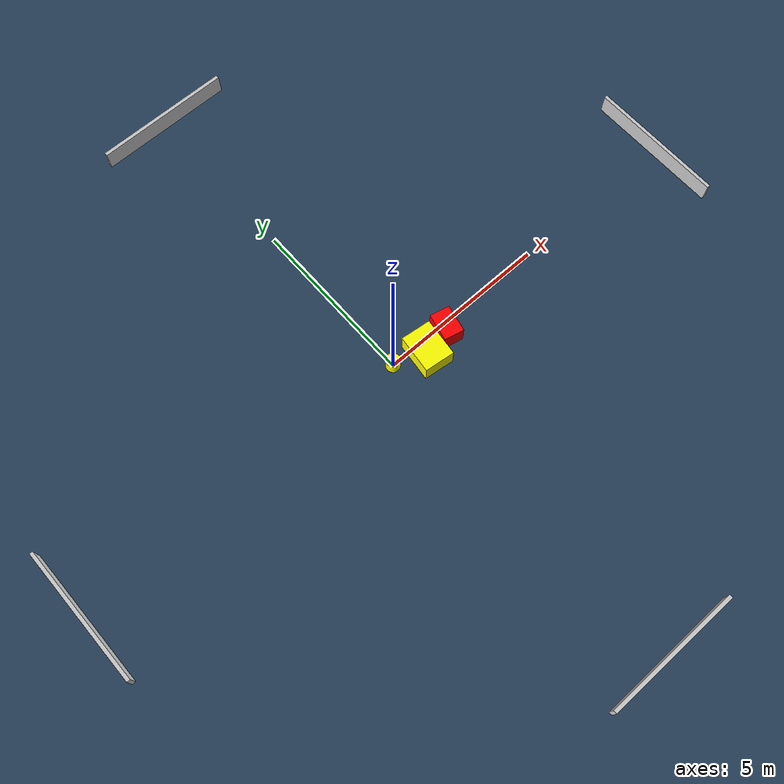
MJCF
<?xml version="1.0" ?>
<mujoco model="generated_environment">
  <option timestep="0.01" integrator="RK4" cone="elliptic"/>
  <default>
    <geom density="1"/>
  </default>
  <asset>
    <texture builtin="gradient" height="3072" name="skybox" rgb1="0.3 0.5 0.7" rgb2="0 0 0" type="skybox" width="512"/>
    <texture builtin="checker" height="300" name="groundplane" rgb1="0.2 0.3 0.4" rgb2="0.1 0.2 0.3" type="2d" width="300"/>
    <material name="groundplane" reflectance="0.2" texrepeat="5 5" texture="groundplane"/>
  </asset>
  <worldbody>
    <light dir="0 0 -1" directional="true" pos="0 0 1.5"/>
    <geom condim="3" friction="0.5 0.005 0.001" material="groundplane" name="floor" pos="0 0 0" size="0 0 0.05" type="plane"/>
    <body name="walls">
      <geom name="wall_1" condim="4" pos="-10.0 0.0 0.3" rgba="0.800000011920929 0.800000011920929 0.800000011920929 1.0" size="0.05 2.0 0.3" type="box"/>
      <geom name="wall_2" condim="4" pos="10.0 0.0 0.3" rgba="0.800000011920929 0.800000011920929 0.800000011920929 1.0" size="0.05 2.0 0.3" type="box"/>
      <geom name="wall_3" condim="4" pos="0.0 -10.0 0.3" rgba="0.800000011920929 0.800000011920929 0.800000011920929 1.0" size="2.0 0.05 0.3" type="box"/>
      <geom name="wall_4" condim="4" pos="0.0 10.0 0.3" rgba="0.800000011920929 0.800000011920929 0.800000011920929 1.0" size="2.0 0.05 0.3" type="box"/>
    </body>
    <body name="robot">
      <joint name="joint_x" type="slide" pos="0 0 0" axis="1 0 0"/>
      <joint name="joint_y" type="slide" pos="0 0 0" axis="0 1 0"/>
      <geom name="robot" type="cylinder" pos="0.0 0.0 0.2" size="0.2 0.2 0.0" mass="5.0" friction="1.0 0.005 0.0001" condim="4" rgba="1.0 1.0 0.0 1.0"/>
    </body>
    <body name="obstacle_1_movable">
      <geom name="obstacle_1_movable" condim="4" pos="0.8996543490313906 -0.3582877149370825 0.3" euler="0 0 173.4402120813486" friction="0.0 0.005 0.001" rgba="1.0 1.0 0.0 1.0" size="0.4388020834433589 0.5532026391883875 0.3" type="box" mass="0.1"/>
      <joint type="free"/>
    </body>
    <body name="obstacle_2_static">
      <geom name="obstacle_2_static" condim="4" pos="1.7178072390649688 -0.21142898681202602 0.3" euler="0 0 257.50906336006636" friction="0.0 0.005 0.001" rgba="1.0 0.0 0.0 1.0" size="0.39880754516550304 0.29046577397309914 0.3" type="box"/>
    </body>
  </worldbody>
  <actuator>
    <motor name="actuator_x" joint="joint_x" gear="1" ctrlrange="-1 1"/>
    <motor name="actuator_y" joint="joint_y" gear="1" ctrlrange="-1 1"/>
  </actuator>
</mujoco>
